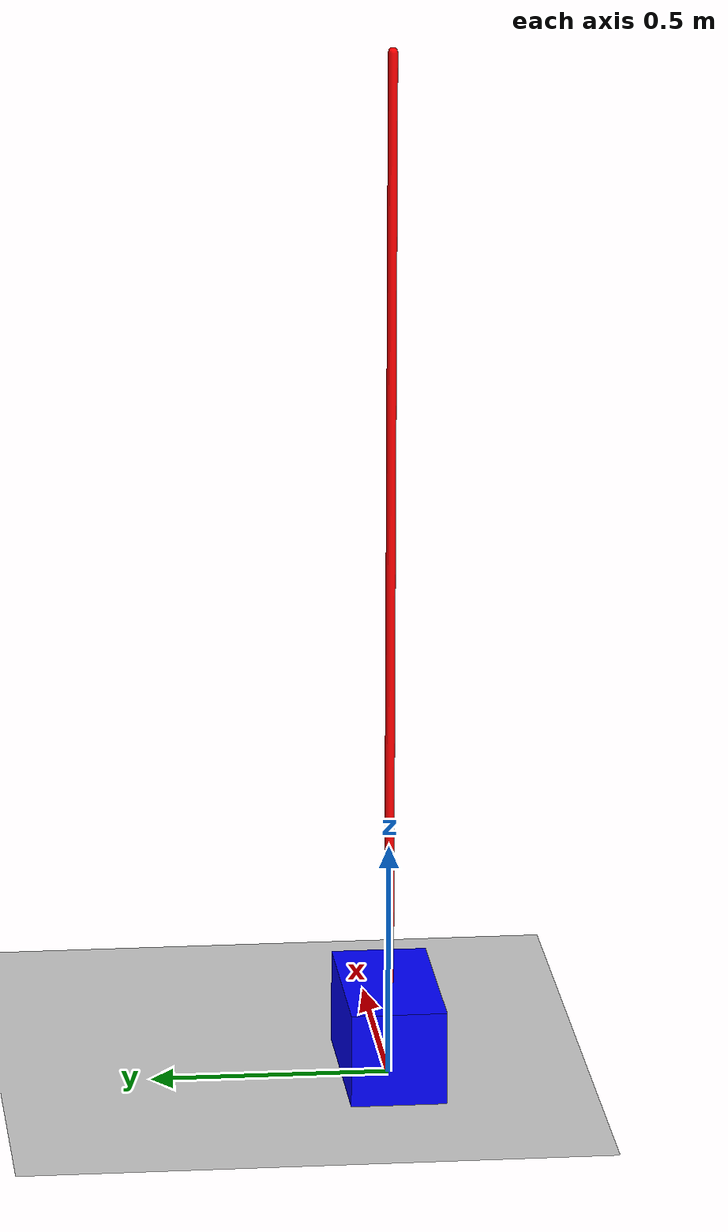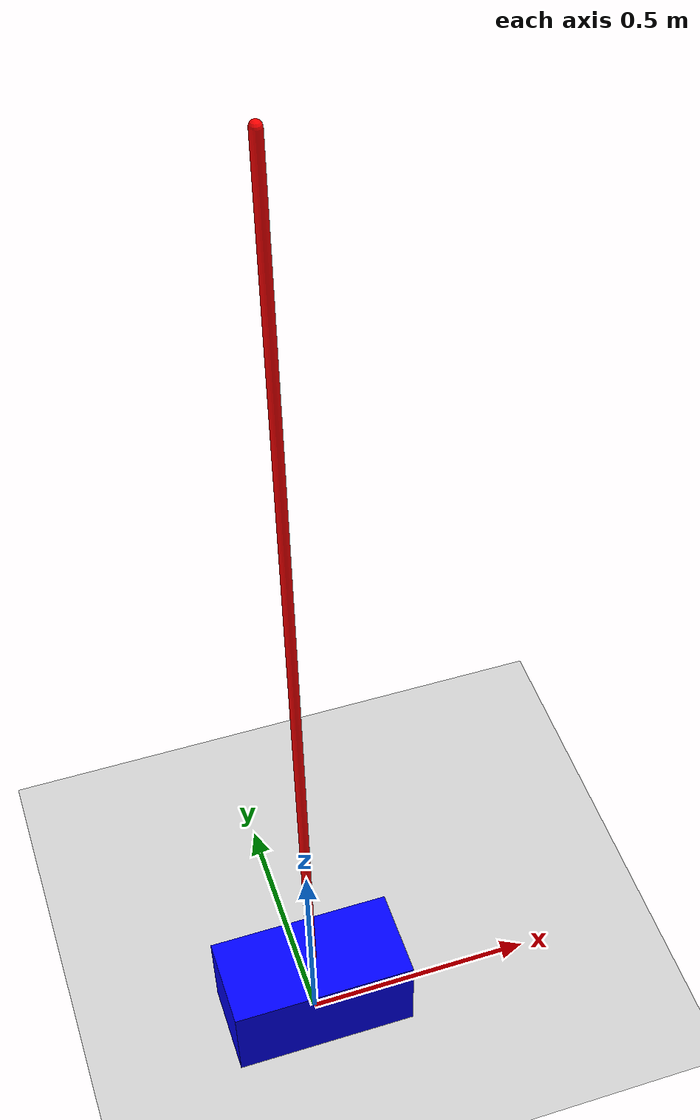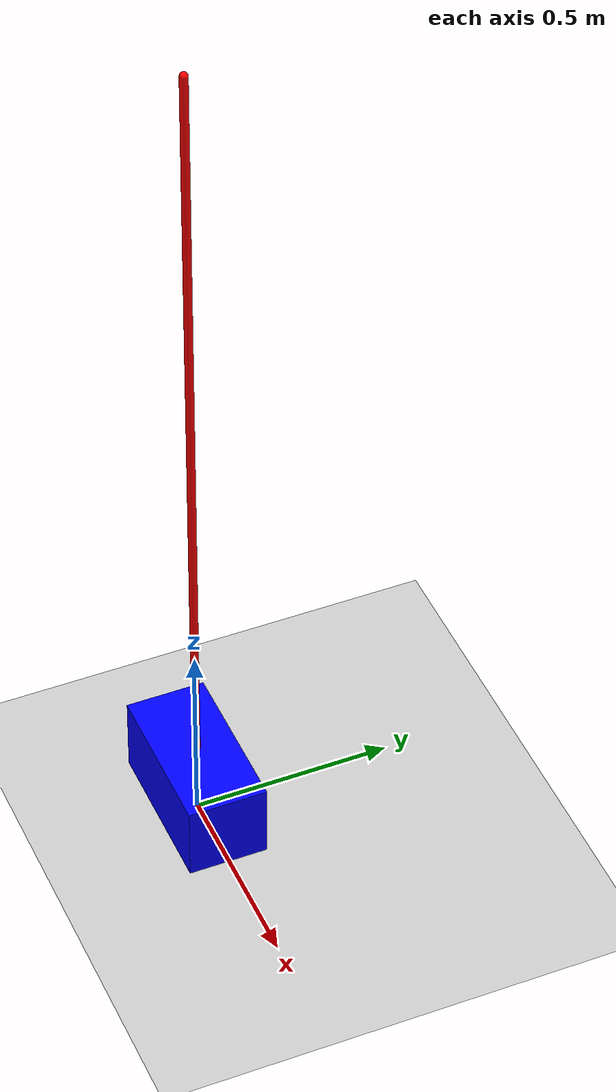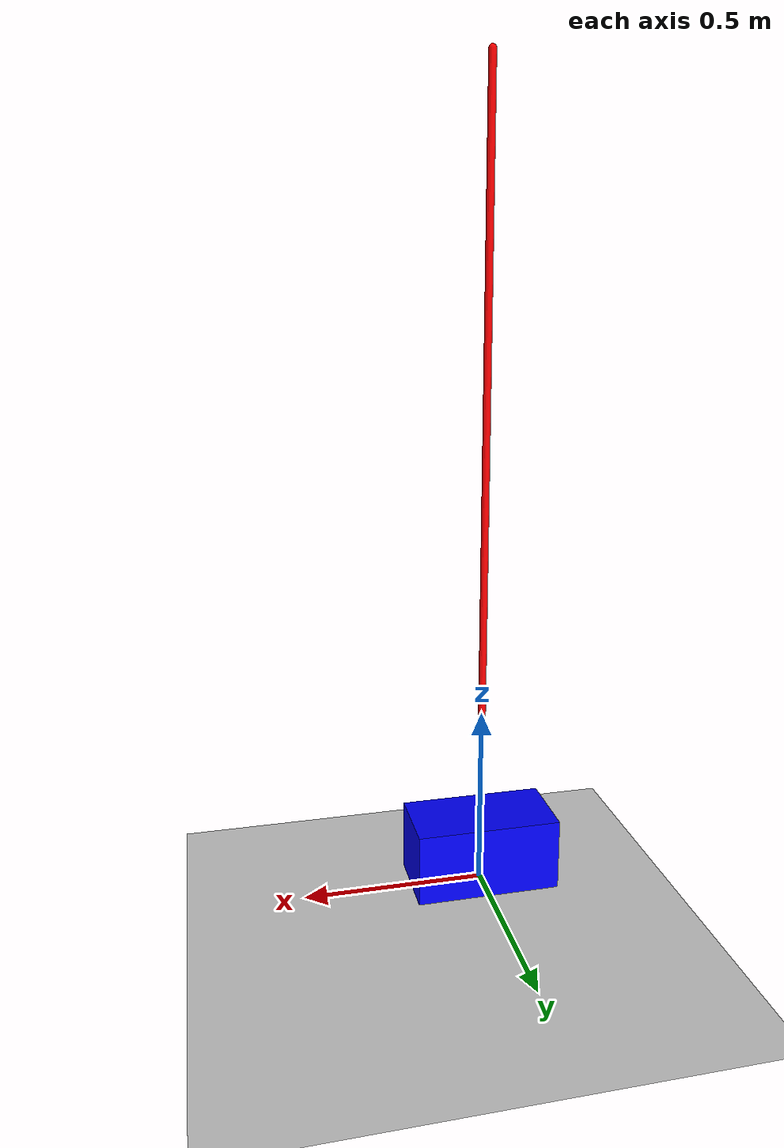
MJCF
<mujoco model="cartpole">
  <compiler angle="radian" coordinate="local"/>
  <option gravity="0 0 -9.8" timestep="0.02"/>

  <default>
    <joint damping="0"/>
    <geom friction="0 0 0"/>
  </default>

  <worldbody>
    <!-- Ground -->
    <geom type="plane" size="5 5 0.1" rgba="0.8 0.8 0.8 1"/>

    <!-- Cart body -->
    <body name="cart" pos="0 0 0.1">
      <joint name="slide" type="slide" axis="1 0 0"/>
      <geom type="box" size="0.2 0.1 0.1" rgba="0 0 1 1" mass="1.0"/>

      <!-- Pole body -->
      <body name="pole" pos="0 0 0.1">
        <joint name="hinge" type="hinge" axis="0 1 0"/>
        <!-- Approximated: pole is 1m long, with mass 0.1kg concentrated near tip -->
        <geom type="capsule" fromto="0 0 0 0 0 2" size="0.01" rgba="1 0 0 1" mass="0.1"/>
      </body>
    </body>
  </worldbody>

  <actuator>
    <!-- Binary force applied to the cart (±10 N) -->
    <motor name="cart_motor" joint="slide" ctrlrange="-10 10" gear="1"/>
  </actuator>
</mujoco>
